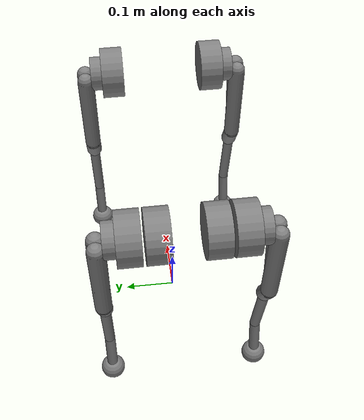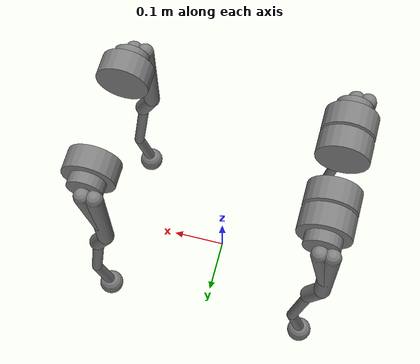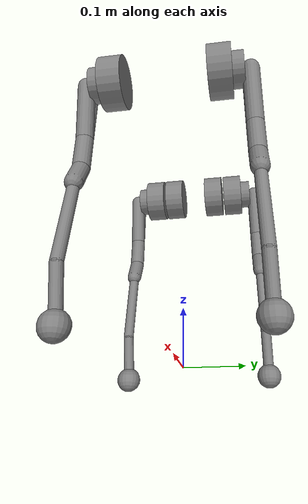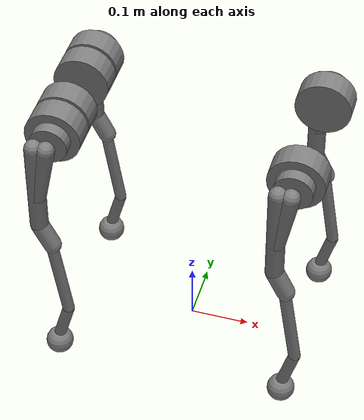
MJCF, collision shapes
<mujoco model="go2 feet only">
  <compiler angle="radian" autolimits="true" />

  <option iterations="1" ls_iterations="5" timestep="0.004" integrator="Euler">
    <flag eulerdamp="disable"/>
  </option>

  <default>
    <default class="go2">
      <geom condim="1" contype="0" conaffinity="0"/>
      <joint axis="0 1 0" damping="0.1" armature="0.01" frictionloss="0.2"/>
      <position forcerange="-23.7 23.7" inheritrange="1" kp="35"/>
      <default class="abduction">
        <joint axis="1 0 0" range="-1.0472 1.0472"/>
      </default>
      <default class="hip">
        <default class="front_hip">
          <joint range="-1.5708 3.4907"/>
        </default>
        <default class="back_hip">
          <joint range="-0.5236 4.5379"/>
        </default>
      </default>
      <default class="knee">
        <joint range="-2.7227 -0.83776"/>
      </default>
      <default class="visual">
        <geom type="mesh" contype="0" conaffinity="0" group="2"/>
      </default>
      <default class="collision">
         <geom group="3" type="capsule"/>
        <default class="hip_left1">
          <geom size="0.046 0.02" pos="0 0.045 0" quat="1 1 0 0" type="cylinder"/>
        </default>
        <default class="hip_left2">
          <geom size="0.031 0.02" pos="0 0.065 0" quat="1 1 0 0" type="cylinder"/>
        </default>
        <default class="hip_left3">
          <geom size="0.046 0.02" quat="1 1 0 0" type="cylinder"/>
        </default>
        <default class="hip_right1">
          <geom size="0.046 0.02" pos="0 -0.045 0" quat="1 1 0 0" type="cylinder"/>
        </default>
        <default class="hip_right2">
          <geom size="0.031 0.02" pos="0 -0.065 0" quat="1 1 0 0" type="cylinder"/>
        </default>
        <default class="hip_right3">
          <geom size="0.046 0.02" quat="1 1 0 0" type="cylinder"/>
        </default>
        <default class="thigh1">
          <geom size="0.015" fromto="-0.02 0 0 -0.02 0 -0.16"/>
        </default>
        <default class="thigh2">
          <geom size="0.015" fromto="0 0 0 -0.02 0 -0.1"/>
        </default>
        <default class="thigh3">
          <geom size="0.015" fromto="-0.02 0 -0.16 0 0 -0.2"/>
        </default>
        <default class="calf1">
          <geom size="0.01" fromto="0 0 0 0.02 0 -0.13"/>
        </default>
        <default class="calf2">
          <geom size="0.01" fromto="0.02 0 -0.13 0 0 -0.2"/>
        </default>
        <default class="foot">
          <geom type="sphere" size="0.023" pos="0 0 -0.213" solimp="0.9 .95 0.023" contype="0" conaffinity="1"/>
        </default>
      </default>
    </default>
  </default>

  <asset>
    <material name="metal" rgba="0 0 0 1" />
    <mesh file="assets/base_0.obj" />
    <mesh file="assets/base_1.obj" />
    <mesh file="assets/base_2.obj" />
    <mesh file="assets/base_3.obj" />
    <mesh file="assets/base_4.obj" />
    <mesh file="assets/hip_0.obj" />
    <mesh file="assets/hip_1.obj" />
    <mesh file="assets/thigh_0.obj" />
    <mesh file="assets/thigh_1.obj" />
    <mesh file="assets/thigh_mirror_0.obj" />
    <mesh file="assets/thigh_mirror_1.obj" />
    <mesh file="assets/calf_0.obj" />
    <mesh file="assets/calf_1.obj" />
    <mesh file="assets/calf_mirror_0.obj" />
    <mesh file="assets/calf_mirror_1.obj" />
    <mesh file="assets/foot.obj" />
  </asset>

  <worldbody>
    <light name="spotlight" mode="targetbodycom" target="trunk" pos="3 0 4"/>
    <body name="trunk" pos="0 0 0.445" childclass="go2">
      <camera name="track" pos="0.846 -1.3 0.316" xyaxes="0.866 0.500 0.000 -0.171 0.296 0.940" mode="trackcom"/>
      <camera name="top" pos="-1 0 1" xyaxes="0 -1 0 0.7 0 0.7" mode="trackcom"/>
      <camera name="side" pos="0 -1 .3" xyaxes="1 0 0 0 1 2" mode="trackcom"/>
      <camera name="back" pos="-1 0 .3" xyaxes="0 -1 0 1 0 2" mode="trackcom"/>
      <site name="head" pos="0.3 0 0" rgba="1 0 0 1" size="0.02" group="5"/>
      <inertial pos="0.021112 0 -0.005366" quat="-0.000543471 0.713435 -0.00173769 0.700719"
        mass="6.921"
        diaginertia="0.107027 0.0980771 0.0244531" />
      <freejoint />
      <geom mesh="base_0" material="metal" class="visual" />
      <geom mesh="base_1" material="metal" class="visual" />
      <geom mesh="base_2" material="metal" class="visual" />
      <geom mesh="base_3" material="metal" class="visual" />
      <geom mesh="base_4" material="metal" class="visual" />
      <site name="imu" pos="-0.02557 0 0.04232" group="5"/>
      <body name="FL_hip" pos="0.1934 0.0465 0">
        <inertial pos="-0.0054 0.00194 -0.000105" quat="0.497014 0.499245 0.505462 0.498237"
          mass="0.678"
          diaginertia="0.00088403 0.000596003 0.000479967" />
        <joint name="FL_hip_joint" class="abduction" />
        <geom mesh="hip_0" material="metal" class="visual" />
        <geom mesh="hip_1" material="metal" class="visual" />
        <geom class="hip_left1"/>
        <geom class="hip_left2"/>
        <body name="FL_thigh" pos="0 0.0955 0">
          <inertial pos="-0.00374 -0.0223 -0.0327" quat="0.829533 0.0847635 -0.0200632 0.551623"
            mass="1.152"
            diaginertia="0.00594973 0.00584149 0.000878787" />
          <joint name="FL_thigh_joint" class="front_hip" />
          <geom mesh="thigh_0" material="metal" class="visual" />
          <geom mesh="thigh_1" material="metal" class="visual" />
          <geom class="thigh1"/>
          <geom class="thigh2"/>
          <geom class="thigh3"/>
          <body name="FL_calf" pos="0 0 -0.213">
            <inertial pos="0.00629595 -0.000622121 -0.141417"
              quat="0.710672 0.00154099 -0.00450087 0.703508"
              mass="0.241352" diaginertia="0.0014901 0.00146356 5.31397e-05" />
            <joint name="FL_calf_joint" class="knee" />
            <geom mesh="calf_0" material="metal" class="visual" />
            <geom mesh="calf_1" material="metal" class="visual" />
            <geom class="calf1"/>
            <geom class="calf2"/>
            <geom pos="0 0 -0.213" mesh="foot" class="visual" material="metal" />
            <geom name="FL" class="foot" />
            <body name="FL_foot" pos="0 0 -0.213" />
            <site name="FL" pos="0 0 -0.213" type="sphere" size="0.023" group="5"/>
          </body>
        </body>
      </body>
      <body name="FR_hip" pos="0.1934 -0.0465 0">
        <inertial pos="-0.0054 -0.00194 -0.000105" quat="0.498237 0.505462 0.499245 0.497014"
          mass="0.678"
          diaginertia="0.00088403 0.000596003 0.000479967" />
        <joint name="FR_hip_joint" class="abduction" />
        <geom mesh="hip_0" material="metal" class="visual" quat="4.63268e-05 1 0 0" />
        <geom mesh="hip_1" material="metal" class="visual" quat="4.63268e-05 1 0 0" />
        <geom class="hip_right1"/>
        <geom class="hip_right2"/>
        <body name="FR_thigh" pos="0 -0.0955 0">
          <inertial pos="-0.00374 0.0223 -0.0327" quat="0.551623 -0.0200632 0.0847635 0.829533"
            mass="1.152"
            diaginertia="0.00594973 0.00584149 0.000878787" />
          <joint name="FR_thigh_joint" class="front_hip" />
          <geom mesh="thigh_mirror_0" material="metal" class="visual" />
          <geom mesh="thigh_mirror_1" material="metal" class="visual" />
          <geom class="thigh1"/>
          <geom class="thigh2"/>
          <geom class="thigh3"/>
          <body name="FR_calf" pos="0 0 -0.213">
            <inertial pos="0.00629595 0.000622121 -0.141417"
              quat="0.703508 -0.00450087 0.00154099 0.710672"
              mass="0.241352" diaginertia="0.0014901 0.00146356 5.31397e-05" />
            <joint name="FR_calf_joint" class="knee" />
            <geom mesh="calf_mirror_0" material="metal" class="visual" />
            <geom mesh="calf_mirror_1" material="metal" class="visual" />
            <geom class="calf1"/>
            <geom class="calf2"/>
            <geom pos="0 0 -0.213" mesh="foot" class="visual" material="metal" />
            <geom name="FR" class="foot" />
            <body name="FR_foot" pos="0 0 -0.213" />
            <site name="FR" pos="0 0 -0.213" type="sphere" size="0.023" group="5"/>
          </body>
        </body>
      </body>
      <body name="RL_hip" pos="-0.1934 0.0465 0">
        <inertial pos="0.0054 0.00194 -0.000105" quat="0.505462 0.498237 0.497014 0.499245"
          mass="0.678"
          diaginertia="0.00088403 0.000596003 0.000479967" />
        <joint name="RL_hip_joint" class="abduction" />
        <geom mesh="hip_0" material="metal" class="visual" quat="4.63268e-05 0 1 0" />
        <geom mesh="hip_1" material="metal" class="visual" quat="4.63268e-05 0 1 0" />

        <geom class="hip_left1"/>
        <geom class="hip_left2"/>
        <geom class="hip_left3"/>

        <body name="RL_thigh" pos="0 0.0955 0">
          <inertial pos="-0.00374 -0.0223 -0.0327" quat="0.829533 0.0847635 -0.0200632 0.551623"
            mass="1.152"
            diaginertia="0.00594973 0.00584149 0.000878787" />
          <joint name="RL_thigh_joint" class="back_hip" />
          <geom mesh="thigh_0" material="metal" class="visual" />
          <geom mesh="thigh_1" material="metal" class="visual" />
          <geom class="thigh1"/>
          <geom class="thigh2"/>
          <geom class="thigh3"/>
          <body name="RL_calf" pos="0 0 -0.213">
            <inertial pos="0.00629595 -0.000622121 -0.141417"
              quat="0.710672 0.00154099 -0.00450087 0.703508"
              mass="0.241352" diaginertia="0.0014901 0.00146356 5.31397e-05" />
            <joint name="RL_calf_joint" class="knee" />
            <geom mesh="calf_0" material="metal" class="visual" />
            <geom mesh="calf_1" material="metal" class="visual" />
            <geom pos="0 0 -0.213" mesh="foot" class="visual" material="metal" />
            <geom class="calf1"/>
            <geom class="calf2"/>
            <geom name="RL" class="foot" />
            <body name="RL_foot" pos="0 0 -0.213" />
            <site name="RL" pos="0 0 -0.213" type="sphere" size="0.023" group="5"/>
          </body>
        </body>
      </body>
      <body name="RR_hip" pos="-0.1934 -0.0465 0">
        <inertial pos="0.0054 -0.00194 -0.000105" quat="0.499245 0.497014 0.498237 0.505462"
          mass="0.678"
          diaginertia="0.00088403 0.000596003 0.000479967" />
        <joint name="RR_hip_joint" class="abduction" />
        <geom mesh="hip_0" material="metal" class="visual"
          quat="2.14617e-09 4.63268e-05 4.63268e-05 -1" />
        <geom mesh="hip_1" material="metal" class="visual"
          quat="2.14617e-09 4.63268e-05 4.63268e-05 -1" />
        <geom class="hip_right1"/>
        <geom class="hip_right2"/>
        <geom class="hip_right3"/>
        <body name="RR_thigh" pos="0 -0.0955 0">
          <inertial pos="-0.00374 0.0223 -0.0327" quat="0.551623 -0.0200632 0.0847635 0.829533"
            mass="1.152"
            diaginertia="0.00594973 0.00584149 0.000878787" />
          <joint name="RR_thigh_joint" class="back_hip" />
          <geom mesh="thigh_mirror_0" material="metal" class="visual" />
          <geom mesh="thigh_mirror_1" material="metal" class="visual" />
          <geom class="thigh1"/>
          <geom class="thigh2"/>
          <geom class="thigh3"/>
          <body name="RR_calf" pos="0 0 -0.213">
            <inertial pos="0.00629595 0.000622121 -0.141417"
              quat="0.703508 -0.00450087 0.00154099 0.710672"
              mass="0.241352" diaginertia="0.0014901 0.00146356 5.31397e-05" />
            <joint name="RR_calf_joint" class="knee" />
            <geom mesh="calf_mirror_0" material="metal" class="visual" />
            <geom mesh="calf_mirror_1" material="metal" class="visual" />
            <geom pos="0 0 -0.213" mesh="foot" class="visual" material="metal" />
            <geom class="calf1"/>
            <geom class="calf2"/>
            <geom name="RR" class="foot" />
            <body name="RR_foot" pos="0 0 -0.213" />
            <site name="RR" pos="0 0 -0.213" type="sphere" size="0.023" group="5"/>
          </body>
        </body>
      </body>
    </body>
  </worldbody>

  <actuator>
    <position class="abduction" name="FR_hip" joint="FR_hip_joint" />
    <position class="hip" name="FR_thigh" joint="FR_thigh_joint" />
    <position class="knee" name="FR_calf" joint="FR_calf_joint" />
    <position class="abduction" name="FL_hip" joint="FL_hip_joint" />
    <position class="hip" name="FL_thigh" joint="FL_thigh_joint" />
    <position class="knee" name="FL_calf" joint="FL_calf_joint" />
    <position class="abduction" name="RR_hip" joint="RR_hip_joint" />
    <position class="hip" name="RR_thigh" joint="RR_thigh_joint" />
    <position class="knee" name="RR_calf" joint="RR_calf_joint" />
    <position class="abduction" name="RL_hip" joint="RL_hip_joint" />
    <position class="hip" name="RL_thigh" joint="RL_thigh_joint" />
    <position class="knee" name="RL_calf" joint="RL_calf_joint" />
  </actuator>

  <sensor>
    <gyro site="imu" name="gyro"/>
    <velocimeter name="local_linvel" site="imu"/>
    <accelerometer site="imu" name="accelerometer"/>
    <framepos objtype="site" objname="imu" name="position"/>
    <framezaxis objtype="site" objname="imu" name="upvector"/>
    <framexaxis objtype="site" objname="imu" name="forwardvector"/>
    <framelinvel objtype="site" objname="imu" name="global_linvel"/>
    <frameangvel objtype="site" objname="imu" name="global_angvel"/>
    <framequat objtype="site" objname="imu" name="orientation"/>
    <framelinvel objtype="site" objname="FR" name="FR_global_linvel"/>
    <framelinvel objtype="site" objname="FL" name="FL_global_linvel"/>
    <framelinvel objtype="site" objname="RR" name="RR_global_linvel"/>
    <framelinvel objtype="site" objname="RL" name="RL_global_linvel"/>
    <framepos objtype="site" objname="FR" name="FR_pos" reftype="site" refname="imu"/>
    <framepos objtype="site" objname="FL" name="FL_pos" reftype="site" refname="imu"/>
    <framepos objtype="site" objname="RR" name="RR_pos" reftype="site" refname="imu"/>
    <framepos objtype="site" objname="RL" name="RL_pos" reftype="site" refname="imu"/>
  </sensor>

</mujoco>
